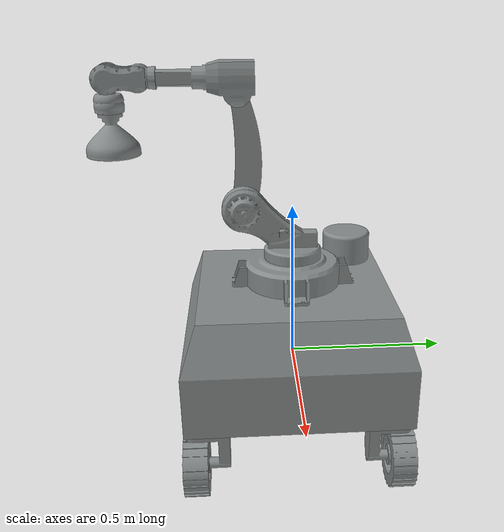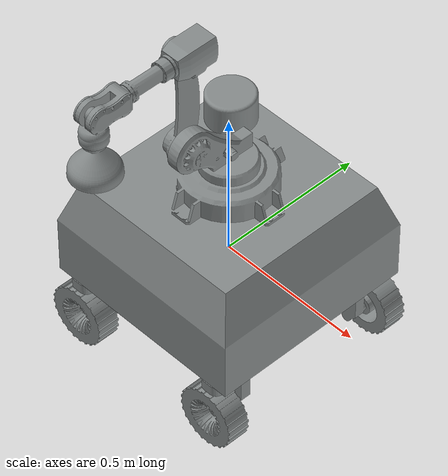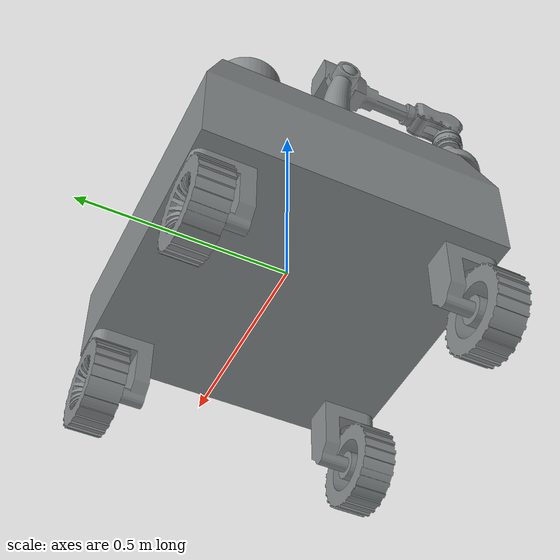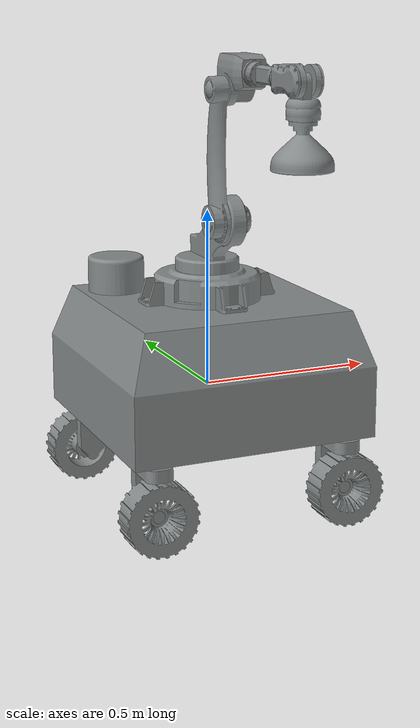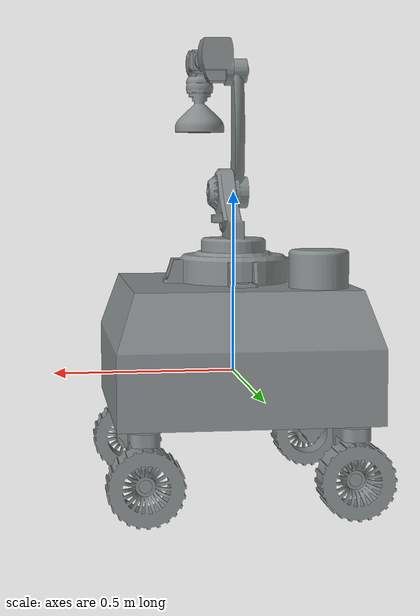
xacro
<?xml version="1.0" ?>
<robot
  name="manipulator" xmlns:xacro="http://ros.org/wiki/xacro">

  <xacro:macro name="body_color">
    <visual>
    <material>
        <ambient>0.8 0.558823529411765 0.1 1</ambient>
        <diffuse>0.8 0.558823529411765 0.1 1</diffuse>
        <specular>0.1 0.1 0.1 1</specular>
        <emissive>0 0 0 0</emissive>
    </material>
    </visual>
  </xacro:macro>

  # Add this before base link
  <link name="dummy_link"></link>

  <link
    name="base_link">
    <inertial>
      <origin
        xyz="4.9107E-05 4.9107E-05 0.074575"
        rpy="0 0 0" />
      <mass
        value="1307.2" />
      <inertia
        ixx="63.83"
        ixy="0.006149"
        ixz="-0.014068"
        iyy="63.795"
        iyz="-0.014068"
        izz="98.574" />
    </inertial>
    <visual>
      <origin
        xyz="0 0 0"
        rpy="0 0 0" />
      <geometry>
        <mesh
          filename="package://manipulator/meshes/base_link.STL" />
      </geometry>
      <material
        name="">
        <color
          rgba="0.52941 0.54902 0.54902 1" />
      </material>
    </visual>
    <collision>
      <origin
        xyz="0 0 0"
        rpy="0 0 0" />
      <geometry>
        <mesh
          filename="package://manipulator/meshes/base_link.STL" />
      </geometry>
    </collision>
  </link>

  # Add this after base link
  <joint name="dummy_joint" type="fixed">
      <origin rpy="-1.5708 0 0" xyz="0 0 0" />
      <parent link="dummy_link"/>
      <child link="base_link"/>
  </joint>

  <link
    name="steering_link_1">
    <inertial>
      <origin
        xyz="0.042479 1.1102E-16 -0.062687"
        rpy="0 0 0" />
      <mass
        value="4.8522" />
      <inertia
        ixx="0.013585"
        ixy="1.6486E-18"
        ixz="0.0021076"
        iyy="0.018007"
        iyz="-2.869E-18"
        izz="0.0085973" />
    </inertial>
    <visual>
      <origin
        xyz="0 0 0"
        rpy="0 0 0" />
      <geometry>
        <mesh
          filename="package://manipulator/meshes/steering_link_1.STL" />
      </geometry>
      <material
        name="">
        <color
          rgba="0.52941 0.54902 0.54902 1" />
      </material>
    </visual>
    <collision>
      <origin
        xyz="0 0 0"
        rpy="0 0 0" />
      <geometry>
        <mesh
          filename="package://manipulator/meshes/steering_link_1.STL" />
      </geometry>
    </collision>
  </link>
  <joint
    name="steering_joint_1"
    type="revolute">
    <origin
      xyz="-0.275 0.105 0.3"
      rpy="1.5708 1.5708 0" />
    <parent
      link="base_link" />
    <child
      link="steering_link_1" />
    <axis
      xyz="0 0 1" />
    <limit
      lower="-3.1416"
      upper="3.1416"
      effort="0"
      velocity="0" />
  </joint>
  <link
    name="wheel_1">
    <inertial>
      <origin
        xyz="-5.5511E-17 0.019674 -8.3267E-17"
        rpy="0 0 0" />
      <mass
        value="12.04" />
      <inertia
        ixx="0.043182"
        ixy="8.5859E-18"
        ixz="-1.8246E-17"
        iyy="0.074681"
        iyz="1.1303E-17"
        izz="0.043182" />
    </inertial>
    <visual>
      <origin
        xyz="0 0 0"
        rpy="0 0 0" />
      <geometry>
        <mesh
          filename="package://manipulator/meshes/wheel_1.STL" />
      </geometry>
      <material
        name="">
        <color
          rgba="0.52941 0.54902 0.54902 1" />
      </material>
    </visual>
    <collision>
      <origin
        xyz="0 0 0"
        rpy="0 0 0" />
      <geometry>
        <mesh
          filename="package://manipulator/meshes/wheel_1.STL" />
      </geometry>
    </collision>
  </link>
  <joint
    name="wheel_joint_1"
    type="continuous">
    <origin
      xyz="0 0 -0.14"
      rpy="0 0 1.5708" />
    <parent
      link="steering_link_1" />
    <child
      link="wheel_1" />
    <axis
      xyz="0 1 0" />
    <limit
      effort="100"
      velocity="100" />
  </joint>
  <link
    name="steering_link_2">
    <inertial>
      <origin
        xyz="0.042479 5.5511E-17 -0.062687"
        rpy="0 0 0" />
      <mass
        value="4.8522" />
      <inertia
        ixx="0.013585"
        ixy="7.2512E-19"
        ixz="0.0021076"
        iyy="0.018007"
        iyz="-1.1739E-18"
        izz="0.0085973" />
    </inertial>
    <visual>
      <origin
        xyz="0 0 0"
        rpy="0 0 0" />
      <geometry>
        <mesh
          filename="package://manipulator/meshes/steering_link_2.STL" />
      </geometry>
      <material
        name="">
        <color
          rgba="0.52941 0.54902 0.54902 1" />
      </material>
    </visual>
    <collision>
      <origin
        xyz="0 0 0"
        rpy="0 0 0" />
      <geometry>
        <mesh
          filename="package://manipulator/meshes/steering_link_2.STL" />
      </geometry>
    </collision>
  </link>
  <joint
    name="steering_joint_2"
    type="continuous">
    <origin
      xyz="-0.275 0.105 -0.3"
      rpy="1.5708 -1.5708 0" />
    <parent
      link="base_link" />
    <child
      link="steering_link_2" />
    <axis
      xyz="0 0 1" />
    <limit
      lower="-3.1416"
      upper="3.1416"
      effort="100"
      velocity="100" />
  </joint>
  <link
    name="wheel_2">
    <inertial>
      <origin
        xyz="5.5511E-17 0.019674 -5.5511E-17"
        rpy="0 0 0" />
      <mass
        value="12.04" />
      <inertia
        ixx="0.043182"
        ixy="-2.9671E-18"
        ixz="1.0408E-17"
        iyy="0.074681"
        iyz="7.6252E-18"
        izz="0.043182" />
    </inertial>
    <visual>
      <origin
        xyz="0 0 0"
        rpy="0 0 0" />
      <geometry>
        <mesh
          filename="package://manipulator/meshes/wheel_2.STL" />
      </geometry>
      <material
        name="">
        <color
          rgba="0.52941 0.54902 0.54902 1" />
      </material>
    </visual>
    <collision>
      <origin
        xyz="0 0 0"
        rpy="0 0 0" />
      <geometry>
        <mesh
          filename="package://manipulator/meshes/wheel_2.STL" />
      </geometry>
    </collision>
  </link>
  <joint
    name="wheel_joint_2"
    type="continuous">
    <origin
      xyz="0 0 -0.14"
      rpy="0 0.56883 1.5708" />
    <parent
      link="steering_link_2" />
    <child
      link="wheel_2" />
    <axis
      xyz="0 1 0" />
    <limit
      effort="100"
      velocity="100" />
  </joint>
  <link
    name="steering_link_3">
    <inertial>
      <origin
        xyz="0.092479 0.0375 -0.027687"
        rpy="0 0 0" />
      <mass
        value="4.8522" />
      <inertia
        ixx="0.013585"
        ixy="7.563E-19"
        ixz="0.0021076"
        iyy="0.018007"
        iyz="-2.9107E-18"
        izz="0.0085973" />
    </inertial>
    <visual>
      <origin
        xyz="0 0 0"
        rpy="0 0 0" />
      <geometry>
        <mesh
          filename="package://manipulator/meshes/steering_link_3.STL" />
      </geometry>
      <material
        name="">
        <color
          rgba="0.52941 0.54902 0.54902 1" />
      </material>
    </visual>
    <collision>
      <origin
        xyz="0 0 0"
        rpy="0 0 0" />
      <geometry>
        <mesh
          filename="package://manipulator/meshes/steering_link_3.STL" />
      </geometry>
    </collision>
  </link>
  <joint
    name="steering_joint_3"
    type="fixed">
    <origin
      xyz="0.3125 0.14 -0.35"
      rpy="1.5708 -1.5708 0" />
    <parent
      link="base_link" />
    <child
      link="steering_link_3" />
    <axis
      xyz="0 0 0" />
  </joint>
  <link
    name="wheel_3">
    <inertial>
      <origin
        xyz="1.1102E-16 -0.030326 1.6653E-16"
        rpy="0 0 0" />
      <mass
        value="12.04" />
      <inertia
        ixx="0.043182"
        ixy="-1.735E-18"
        ixz="-1.7347E-17"
        iyy="0.074681"
        iyz="-2.5561E-18"
        izz="0.043182" />
    </inertial>
    <visual>
      <origin
        xyz="0 0 0"
        rpy="0 0 0" />
      <geometry>
        <mesh
          filename="package://manipulator/meshes/wheel_3.STL" />
      </geometry>
      <material
        name="">
        <color
          rgba="0.52941 0.54902 0.54902 1" />
      </material>
    </visual>
    <collision>
      <origin
        xyz="0 0 0"
        rpy="0 0 0" />
      <geometry>
        <mesh
          filename="package://manipulator/meshes/wheel_3.STL" />
      </geometry>
    </collision>
  </link>
  <joint
    name="wheel_joint_3"
    type="continuous">
    <origin
      xyz="0 0.0375 -0.105"
      rpy="0 0.58362 1.5708" />
    <parent
      link="steering_link_3" />
    <child
      link="wheel_3" />
    <axis
      xyz="0 1 0" />
    <limit
      effort="100"
      velocity="100" />
  </joint>
  <link
    name="steering_link_4">
    <inertial>
      <origin
        xyz="0.092479 0.0375 -0.027687"
        rpy="0 0 0" />
      <mass
        value="4.8522" />
      <inertia
        ixx="0.013585"
        ixy="1.0431E-18"
        ixz="0.0021076"
        iyy="0.018007"
        iyz="1.0299E-18"
        izz="0.0085973" />
    </inertial>
    <visual>
      <origin
        xyz="0 0 0"
        rpy="0 0 0" />
      <geometry>
        <mesh
          filename="package://manipulator/meshes/steering_link_4.STL" />
      </geometry>
      <material
        name="">
        <color
          rgba="0.52941 0.54902 0.54902 1" />
      </material>
    </visual>
    <collision>
      <origin
        xyz="0 0 0"
        rpy="0 0 0" />
      <geometry>
        <mesh
          filename="package://manipulator/meshes/steering_link_4.STL" />
      </geometry>
    </collision>
  </link>
  <joint
    name="steering_joint_4"
    type="fixed">
    <origin
      xyz="0.2375 0.14 0.35"
      rpy="1.5708 1.5708 0" />
    <parent
      link="base_link" />
    <child
      link="steering_link_4" />
    <axis
      xyz="0 0 0" />
  </joint>
  <link
    name="wheel_4">
    <inertial>
      <origin
        xyz="0 -0.030326 0"
        rpy="0 0 0" />
      <mass
        value="12.04" />
      <inertia
        ixx="0.043182"
        ixy="1.2938E-17"
        ixz="-2.4229E-17"
        iyy="0.074681"
        iyz="-1.2277E-17"
        izz="0.043182" />
    </inertial>
    <visual>
      <origin
        xyz="0 0 0"
        rpy="0 0 0" />
      <geometry>
        <mesh
          filename="package://manipulator/meshes/wheel_4.STL" />
      </geometry>
      <material
        name="">
        <color
          rgba="0.52941 0.54902 0.54902 1" />
      </material>
    </visual>
    <collision>
      <origin
        xyz="0 0 0"
        rpy="0 0 0" />
      <geometry>
        <mesh
          filename="package://manipulator/meshes/wheel_4.STL" />
      </geometry>
    </collision>
  </link>
  <joint
    name="wheel_joint_"
    type="continuous">
    <origin
      xyz="0 0.0375 -0.105"
      rpy="0 0 1.5708" />
    <parent
      link="steering_link_4" />
    <child
      link="wheel_4" />
    <axis
      xyz="0 1 0" />
    <limit
      effort="100"
      velocity="100" />
  </joint>
  <link
    name="lidar">
    <inertial>
      <origin
        xyz="0 2.7756E-17 0.04975"
        rpy="0 0 0" />
      <mass
        value="15.601" />
      <inertia
        ixx="0.037726"
        ixy="-4.7022E-35"
        ixz="-6.5636E-19"
        iyy="0.037726"
        iyz="-1.0109E-34"
        izz="0.04969" />
    </inertial>
    <visual>
      <origin
        xyz="0 0 0"
        rpy="0 0 0" />
      <geometry>
        <mesh
          filename="package://manipulator/meshes/lidar.STL" />
      </geometry>
      <material
        name="">
        <color
          rgba="0.52941 0.54902 0.54902 1" />
      </material>
    </visual>
    <collision>
      <origin
        xyz="0 0 0"
        rpy="0 0 0" />
      <geometry>
        <mesh
          filename="package://manipulator/meshes/lidar.STL" />
      </geometry>
    </collision>
  </link>
  <joint
    name="lidar_joint"
    type="fixed">
    <origin
      xyz="-0.19908 -0.25 0.20045"
      rpy="1.5708 0 0" />
    <parent
      link="base_link" />
    <child
      link="lidar" />
    <axis
      xyz="0 0 0" />
  </joint>
  <link
    name="link_1">
    <inertial>
      <origin
        xyz="-0.059024 -0.0039351 0.084778"
        rpy="0 0 0" />
      <mass
        value="18.624" />
      <inertia
        ixx="0.09669"
        ixy="-0.0048378"
        ixz="0.073637"
        iyy="0.19228"
        iyz="0.0043722"
        izz="0.13132" />
    </inertial>
    <visual>
      <origin
        xyz="0 0 0"
        rpy="0 0 0" />
      <geometry>
        <mesh
          filename="package://manipulator/meshes/link_1.STL" />
      </geometry>
      <material
        name="">
        <color
          rgba="0.52941 0.54902 0.54902 1" />
      </material>
    </visual>
    <collision>
      <origin
        xyz="0 0 0"
        rpy="0 0 0" />
      <geometry>
        <mesh
          filename="package://manipulator/meshes/link_1.STL" />
      </geometry>
    </collision>
  </link>
  <joint
    name="link_joint_1"
    type="continuous">
    <origin
      xyz="0 -0.334 0"
      rpy="1.5708 -1.5708 0" />
    <parent
      link="base_link" />
    <child
      link="link_1" />
    <axis
      xyz="0 0 1" />
    <limit
      lower="-3.1416"
      upper="3.1416"
      effort="100"
      velocity="100" />
  </joint>
  <link
    name="link_2">
    <inertial>
      <origin
        xyz="-0.14996 -0.0094082 0.036311"
        rpy="0 0 0" />
      <mass
        value="8.2062" />
      <inertia
        ixx="0.0053635"
        ixy="-0.0019393"
        ixz="-0.00037798"
        iyy="0.14549"
        iyz="-0.00015886"
        izz="0.14856" />
    </inertial>
    <visual>
      <origin
        xyz="0 0 0"
        rpy="0 0 0" />
      <geometry>
        <mesh
          filename="package://manipulator/meshes/link_2.STL" />
      </geometry>
      <material
        name="">
        <color
          rgba="0.52941 0.54902 0.54902 1" />
      </material>
    </visual>
    <collision>
      <origin
        xyz="0 0 0"
        rpy="0 0 0" />
      <geometry>
        <mesh
          filename="package://manipulator/meshes/link_2.STL" />
      </geometry>
    </collision>
  </link>
  <joint
    name="joint_link_2"
    type="continuous">
    <origin
      xyz="-0.15 0 0.16"
      rpy="-1.5708 1.5433 0" />
    <parent
      link="link_1" />
    <child
      link="link_2" />
    <axis
      xyz="0 0 1" />
    <limit
      lower="-3.1416"
      upper="3.1416"
      effort="100"
      velocity="100" />
  </joint>
  <link
    name="link_3">
    <inertial>
      <origin
        xyz="0.043583 -0.043578 0.019176"
        rpy="0 0 0" />
      <mass
        value="11.283" />
      <inertia
        ixx="0.060031"
        ixy="0.01534"
        ixz="0.0045951"
        iyy="0.026161"
        iyz="-0.014572"
        izz="0.057655" />
    </inertial>
    <visual>
      <origin
        xyz="0 0 0"
        rpy="0 0 0" />
      <geometry>
        <mesh
          filename="package://manipulator/meshes/link_3.STL" />
      </geometry>
      <material
        name="">
        <color
          rgba="0.52941 0.54902 0.54902 1" />
      </material>
    </visual>
    <collision>
      <origin
        xyz="0 0 0"
        rpy="0 0 0" />
      <geometry>
        <mesh
          filename="package://manipulator/meshes/link_3.STL" />
      </geometry>
    </collision>
  </link>
  <joint
    name="joint_link_3"
    type="continuous">
    <origin
      xyz="-0.35 0 0"
      rpy="-1.5708 1.2274 1.9986" />
    <parent
      link="link_2" />
    <child
      link="link_3" />
    <axis
      xyz="0.94161 0.3367 0" />
    <limit
      lower="-3.1416"
      upper="3.1416"
      effort="100"
      velocity="100" />
  </joint>
  <link
    name="link_4">
    <inertial>
      <origin
        xyz="0.034716 -0.097082 -0.043628"
        rpy="0 0 0" />
      <mass
        value="4.5488" />
      <inertia
        ixx="0.010246"
        ixy="0.0016632"
        ixz="0.00097077"
        iyy="0.0061178"
        iyz="-0.002558"
        izz="0.010838" />
    </inertial>
    <visual>
      <origin
        xyz="0 0 0"
        rpy="0 0 0" />
      <geometry>
        <mesh
          filename="package://manipulator/meshes/link_4.STL" />
      </geometry>
      <material
        name="">
        <color
          rgba="0.52941 0.54902 0.54902 1" />
      </material>
    </visual>
    <collision>
      <origin
        xyz="0 0 0"
        rpy="0 0 0" />
      <geometry>
        <mesh
          filename="package://manipulator/meshes/link_4.STL" />
      </geometry>
    </collision>
  </link>
  <joint
    name="joint_link_4"
    type="continuous">
    <origin
      xyz="0.095279 -0.18329 -0.037744"
      rpy="2.382 0.28812 -2.5704" />
    <parent
      link="link_3" />
    <child
      link="link_4" />
    <axis
      xyz="0.31008 -0.86717 -0.3897" />
    <limit
      lower="-3.1416"
      upper="3.1416"
      effort="100"
      velocity="100" />
  </joint>
  <link
    name="link_5">
    <inertial>
      <origin
        xyz="-0.016408 0.036444 -0.042263"
        rpy="0 0 0" />
      <mass
        value="2.6241" />
      <inertia
        ixx="0.0027467"
        ixy="0.00016692"
        ixz="-0.00018608"
        iyy="0.0024334"
        iyz="0.00042524"
        izz="0.0023081" />
    </inertial>
    <visual>
      <origin
        xyz="0 0 0"
        rpy="0 0 0" />
      <geometry>
        <mesh
          filename="package://manipulator/meshes/link_5.STL" />
      </geometry>
      <material
        name="">
        <color
          rgba="0.52941 0.54902 0.54902 1" />
      </material>
    </visual>
    <collision>
      <origin
        xyz="0 0 0"
        rpy="0 0 0" />
      <geometry>
        <mesh
          filename="package://manipulator/meshes/link_5.STL" />
      </geometry>
    </collision>
  </link>
  <joint
    name="joint_link_5"
    type="continuous">
    <origin
      xyz="0.048932 -0.13684 -0.061495"
      rpy="2.0077 0.30375 -2.6698" />
    <parent
      link="link_4" />
    <child
      link="link_5" />
    <axis
      xyz="0.93402 0.35433 -0.045258" />
    <limit
      lower="-3.1416"
      upper="3.1416"
      effort="100"
      velocity="100" />
  </joint>
  <link
    name="end_effector">
    <inertial>
      <origin
        xyz="-3.8515E-11 3.9888E-07 -0.066073"
        rpy="0 0 0" />
      <mass
        value="2.0243" />
      <inertia
        ixx="0.0058599"
        ixy="2.2551E-17"
        ixz="2.0837E-13"
        iyy="0.0058599"
        iyz="3.7145E-08"
        izz="0.0062173" />
    </inertial>
    <visual>
      <origin
        xyz="0 0 0"
        rpy="0 0 0" />
      <geometry>
        <mesh
          filename="package://manipulator/meshes/end_effector.STL" />
      </geometry>
      <material
        name="">
        <color
          rgba="0.52941 0.54902 0.54902 1" />
      </material>
    </visual>
    <collision>
      <origin
        xyz="0 0 0"
        rpy="0 0 0" />
      <geometry>
        <mesh
          filename="package://manipulator/meshes/end_effector.STL" />
      </geometry>
    </collision>
  </link>
  <joint
    name="end_effector_joint"
    type="continuous">
    <origin
      xyz="-0.026229 0.059004 -0.068314"
      rpy="0.55846 -0.54094 1.0999" />
    <parent
      link="link_5" />
    <child
      link="end_effector" />
    <axis
      xyz="0 0 1" />
    <limit
      lower="-3.1416"
      upper="3.1416"
      effort="100"
      velocity="100" />
  </joint>

# Add color
  <gazebo reference="base_link">
      <xacro:body_color />
  </gazebo>

# Add controller
 <ros2_control name="GazeboSystem" type="system">
    <hardware>
        <plugin>gazebo_ros2_control/GazeboSystem</plugin>
    </hardware>

   # Velocity Controllers

    <joint name="wheel_joint_1">
          <command_interface name="velocity">
              <param name="min">-1000.0</param>
              <param name="max">1000.0</param>
          </command_interface>
          <state_interface name="position"/>
          <state_interface name="velocity"/>
      </joint>

    <joint name="wheel_joint_2">
        <command_interface name="velocity">
            <param name="min">-1000.0</param>
            <param name="max">1000.0</param>
        </command_interface>
        <state_interface name="position"/>
        <state_interface name="velocity"/>
    </joint>

    <joint name="wheel_joint_3">
        <command_interface name="velocity">
            <param name="min">-1000.0</param>
            <param name="max">1000.0</param>
        </command_interface>
        <state_interface name="position"/>
        <state_interface name="velocity"/>
    </joint>

    <joint name="wheel_joint_">
        <command_interface name="velocity">
            <param name="min">-1000.0</param>
            <param name="max">1000.0</param>
        </command_interface>
        <state_interface name="position"/>
        <state_interface name="velocity"/>
    </joint>

   <joint name="steering_joint_1">
        <command_interface name="velocity">
            <param name="min">-1000.0</param>
            <param name="max">1000.0</param>
        </command_interface>
        <state_interface name="position"/>
        <state_interface name="velocity"/>
    </joint>

    <joint name="steering_joint_2">
        <command_interface name="velocity">
            <param name="min">-1000.0</param>
            <param name="max">1000.0</param>
        </command_interface>
        <state_interface name="position"/>
        <state_interface name="velocity"/>
    </joint>

    <joint name="link_joint_1">
        <command_interface name="velocity">
            <param name="min">-1000.0</param>
            <param name="max">1000.0</param>
        </command_interface>
        <state_interface name="position"/>
        <state_interface name="velocity"/>
    </joint>

    <joint name="joint_link_2">
        <command_interface name="velocity">
            <param name="min">-1000.0</param>
            <param name="max">1000.0</param>
        </command_interface>
        <state_interface name="position"/>
        <state_interface name="velocity"/>
    </joint>

    <joint name="joint_link_3">
        <command_interface name="velocity">
            <param name="min">-1000.0</param>
            <param name="max">1000.0</param>
        </command_interface>
        <state_interface name="position"/>
        <state_interface name="velocity"/>
    </joint>

    <joint name="joint_link_4">
        <command_interface name="velocity">
            <param name="min">-1000.0</param>
            <param name="max">1000.0</param>
        </command_interface>
        <state_interface name="position"/>
        <state_interface name="velocity"/>
    </joint>

    <joint name="joint_link_5">
        <command_interface name="velocity">
            <param name="min">-1000.0</param>
            <param name="max">1000.0</param>
        </command_interface>
        <state_interface name="position"/>
        <state_interface name="velocity"/>
    </joint>

    <joint name="end_effector_joint">
        <command_interface name="velocity">
            <param name="min">-1000.0</param>
            <param name="max">1000.0</param>
        </command_interface>
        <state_interface name="position"/>
        <state_interface name="velocity"/>
    </joint>

   # Position Controller
    <joint name="steering_joint_1">
      <command_interface name="position">
          <param name="min">-3.14</param>
          <param name="max">3.14</param>
      </command_interface>
      <state_interface name="position"/>
      <state_interface name="velocity"/>
    </joint>

    <joint name="steering_joint_2">
        <command_interface name="position">
            <param name="min">-3.14</param>
            <param name="max">3.14</param>
        </command_interface>
        <state_interface name="position"/>
        <state_interface name="velocity"/>
    </joint>

    <joint name="link_joint_1">
      <command_interface name="position">
          <param name="min">-3.14</param>
          <param name="max">3.14</param>
      </command_interface>
      <state_interface name="position"/>
      <state_interface name="velocity"/>
    </joint>

    <joint name="joint_link_2">
        <command_interface name="position">
            <param name="min">-3.14</param>
            <param name="max">3.14</param>
        </command_interface>
        <state_interface name="position"/>
        <state_interface name="velocity"/>
    </joint>

    <joint name="joint_link_3">
      <command_interface name="position">
          <param name="min">-3.14</param>
          <param name="max">3.14</param>
      </command_interface>
      <state_interface name="position"/>
      <state_interface name="velocity"/>
    </joint>

    <joint name="joint_link_4">
        <command_interface name="position">
            <param name="min">-3.14</param>
            <param name="max">3.14</param>
        </command_interface>
        <state_interface name="position"/>
        <state_interface name="velocity"/>
    </joint>

   <joint name="joint_link_5">
      <command_interface name="position">
          <param name="min">-3.14</param>
          <param name="max">3.14</param>
      </command_interface>
      <state_interface name="position"/>
      <state_interface name="velocity"/>
    </joint>

    <joint name="end_effector_joint">
        <command_interface name="position">
            <param name="min">-3.14</param>
            <param name="max">3.14</param>
        </command_interface>
        <state_interface name="position"/>
        <state_interface name="velocity"/>
    </joint>

    #Controller end
  </ros2_control>
  <gazebo>
    <plugin filename="libgazebo_ros2_control.so" name="gazebo_ros2_control">
        <parameters>$(find manipulator)/config/control.yaml</parameters>
    </plugin>
  </gazebo>

  # LIDAR
  <gazebo reference="lidar">
  <sensor name="lidar" type="ray">
    <pose>0.0 0.0 0.0 0 0 0</pose>
    <always_on>true</always_on>
    <visualize>true</visualize>
    <update_rate>5</update_rate>
    <ray>
      <scan>
        <horizontal>
          <samples>360</samples>
          <resolution>1.00000</resolution>
          <min_angle>0.000000</min_angle>
          <max_angle>6.280000</max_angle>
        </horizontal>
      </scan>
      <range>
        <min>0.120000</min>
        <max>3.5</max>
        <resolution>0.015000</resolution>
      </range>
      <noise>
        <type>gaussian</type>
        <mean>0.0</mean>
        <stddev>0.01</stddev>
      </noise>
    </ray>
    <plugin name="scan" filename="libgazebo_ros_ray_sensor.so">
      <ros>
        <remapping>~/out:=scan</remapping>
      </ros>
      <output_type>sensor_msgs/LaserScan</output_type>
      <frame_name>add_name_of_your_link</frame_name>
    </plugin>
  </sensor>
  </gazebo>

  # IMU
  <gazebo reference="base_link">
  <gravity>true</gravity>
  <sensor name="imu_sensor" type="imu">
    <always_on>true</always_on>
    <update_rate>100</update_rate>
    <visualize>true</visualize>
    <topic>__default_topic__</topic>
    <plugin filename="libgazebo_ros_imu_sensor.so" name="imu_plugin">
      <topicName>imu</topicName>
      <bodyName>base_link</bodyName>
      <updateRateHZ>10.0</updateRateHZ>
      <gaussianNoise>0.0</gaussianNoise>
      <xyzOffset>0 0 0</xyzOffset>
      <rpyOffset>0 0 0</rpyOffset>
      <frameName>base_link</frameName>
      <initialOrientationAsReference>false</initialOrientationAsReference>
    </plugin>
    <pose>0 0 0 0 0 0</pose>
  </sensor>
</gazebo>

</robot>
